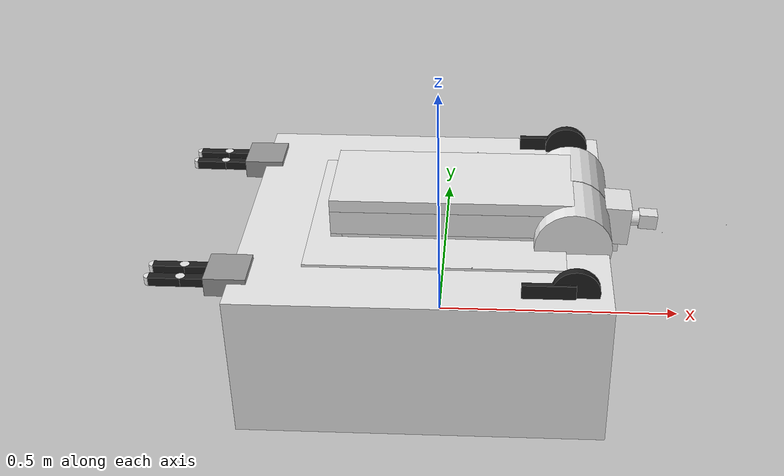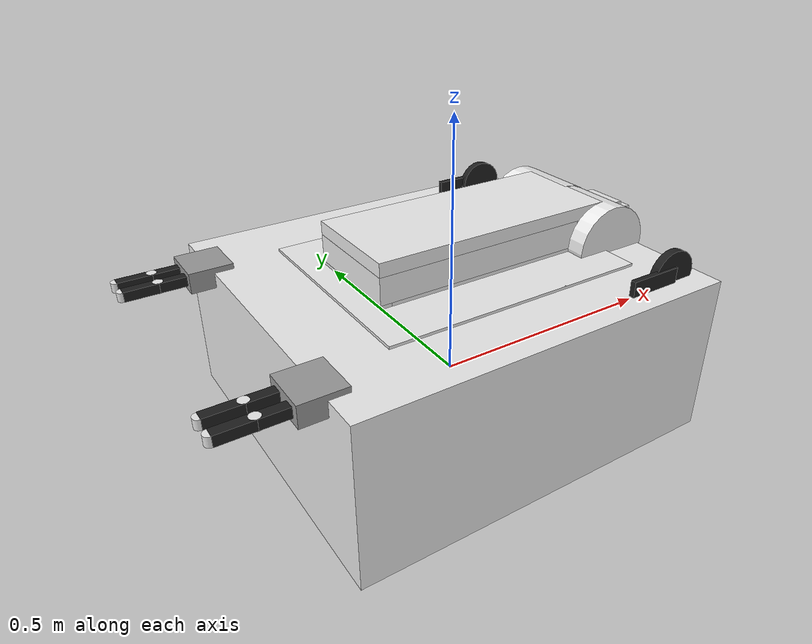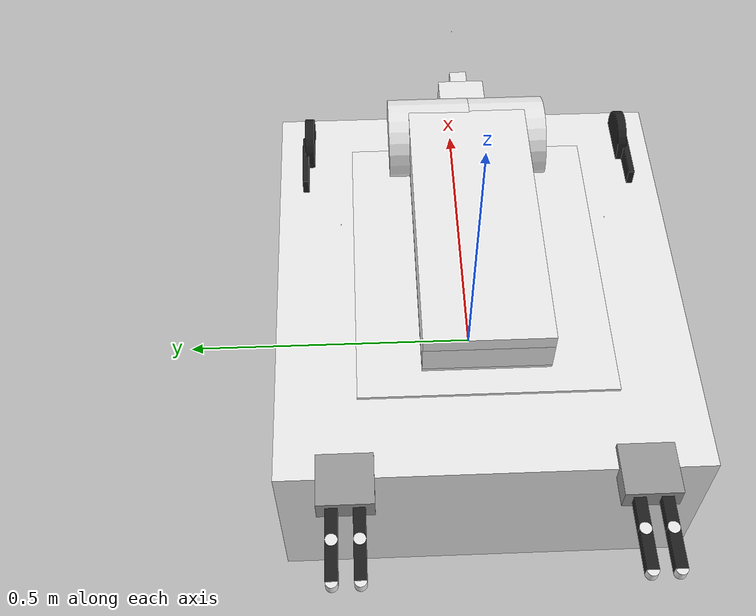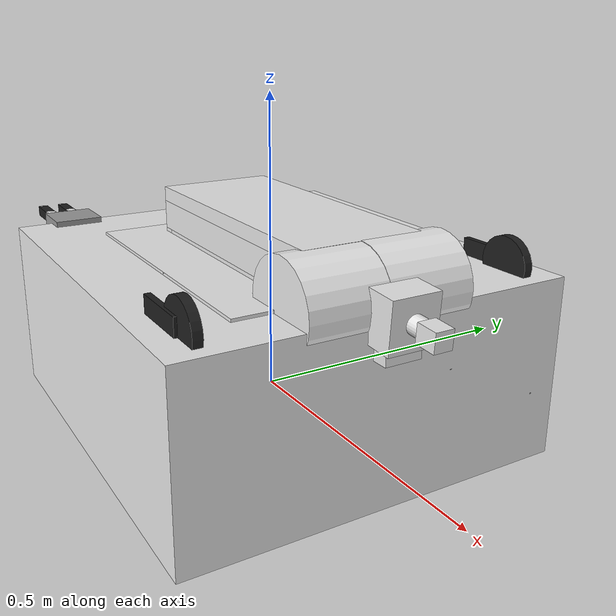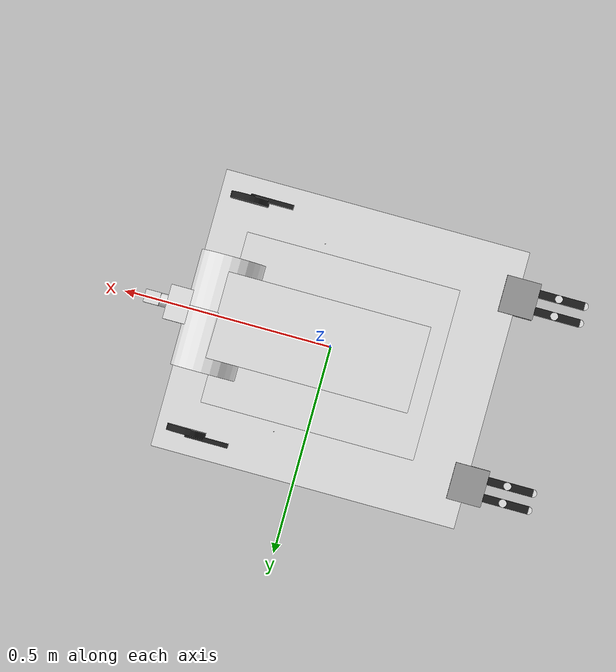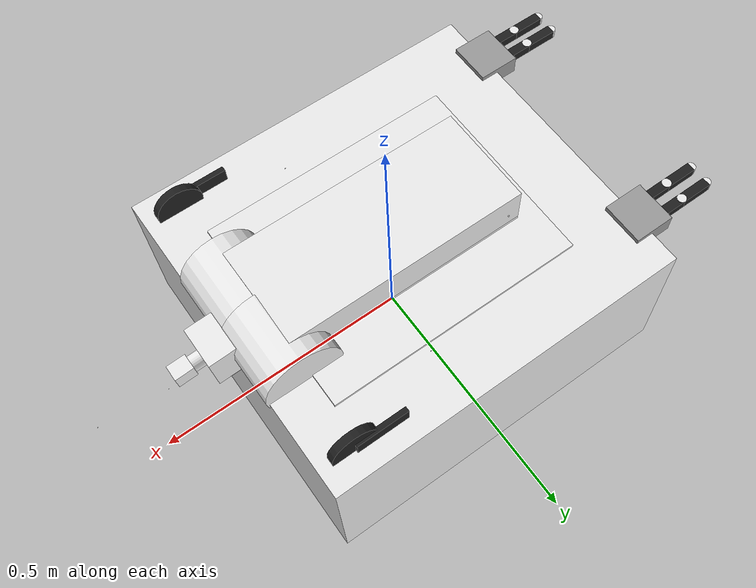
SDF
<sdf version="1.4">
 <model name="sergio">
  <link name="base_link">
   <inertial>
    <pose>0.183413 -3.77114e-18 0.169408 0 -0 0</pose>
    <mass>0.92</mass>
    <inertia>
     <ixx>0.0232844</ixx>
     <ixy>-6.36342e-19</ixy>
     <ixz>-0.00704276</ixz>
     <iyy>0.0329244</iyy>
     <iyz>-2.92848e-19</iyz>
     <izz>0.0454683</izz>
    </inertia>
   </inertial>
   <collision name="base_link_collision">
    <geometry><cylinder><length>0</length><radius>0</radius></cylinder></geometry>
   </collision>
   <collision name="base_link_collision_base">
    <pose>-0.0235 0 0.085 0 -0 0</pose>
    <geometry><box><size>0.713 0.65 0.3</size></box></geometry>
   </collision>
   <collision name="base_link_collision_base_laser">
    <pose>0.3295 0 0.2095 0 -0 0</pose>
    <geometry><box><size>0.06 0.06 0.069</size></box></geometry>
   </collision>
   <collision name="base_link_collision_base_lasertop">
    <pose>0.3295 0 0.253 0 -0 0</pose>
    <geometry><box><size>0.06 0.06 0.018</size></box></geometry>
   </collision>
   <collision name="base_link_collision_base_torso_mount">
    <pose>0 0 0.14 0 -0 0</pose>
    <geometry><cylinder><length>0</length><radius>0</radius></cylinder></geometry>
   </collision>
   <collision name="base_link_collision_laser_mount">
    <pose>0.3045 0 0.1575 0 -0 0</pose>
    <geometry><box><size>0.01 0.06 0.035</size></box></geometry>
   </collision>
   <collision name="base_link_collision_sidepot_left">
    <pose>0 0.28075 0.085 0 -0 0</pose>
    <geometry><box><size>0.4 0.0615 0.1</size></box></geometry>
   </collision>
   <collision name="base_link_collision_sidepot_right">
    <pose>0 -0.28075 0.085 0 -0 0</pose>
    <geometry><box><size>0.4 0.0615 0.1</size></box></geometry>
   </collision>
   <collision name="base_link_collision_torso_mounting_frame">
    <pose>0 0 0.215 0 -0 0</pose>
    <geometry><box><size>0.5 0.4 0.05</size></box></geometry>
   </collision>
   <visual name="base_link_visual">
    <geometry><cylinder><length>0</length><radius>0</radius></cylinder></geometry>
    <material><script><name>Gazebo/White</name><uri>__default__</uri></script></material>
    <material><script><name>Gazebo/White</name><uri>__default__</uri></script></material>
   </visual>
   <visual name="base_link_visual_base">
    <pose>-0.0235 0 0.085 0 -0 0</pose>
    <geometry><box><size>0.713 0.65 0.3</size></box></geometry>
    <material><script><name>Gazebo/White</name><uri>__default__</uri></script></material>
   </visual>
   <visual name="base_link_visual_base_laser">
    <pose>0.3295 0 0.2095 0 -0 0</pose>
    <geometry><box><size>0.06 0.06 0.069</size></box></geometry>
    <material><script><name>Gazebo/White</name><uri>__default__</uri></script></material>
    <material><script><name>Gazebo/Black</name><uri>__default__</uri></script></material>
   </visual>
   <visual name="base_link_visual_base_lasertop">
    <pose>0.3295 0 0.253 0 -0 0</pose>
    <geometry><box><size>0.06 0.06 0.018</size></box></geometry>
    <material><script><name>Gazebo/White</name><uri>__default__</uri></script></material>
    <material><script><name>Gazebo/Black</name><uri>__default__</uri></script></material>
    <material><script><name>Gazebo/Orange</name><uri>__default__</uri></script></material>
   </visual>
   <visual name="base_link_visual_base_torso_mount">
    <pose>0 0 0.14 0 -0 0</pose>
    <geometry><cylinder><length>0</length><radius>0</radius></cylinder></geometry>
    <material><script><name>Gazebo/White</name><uri>__default__</uri></script></material>
    <material><script><name>Gazebo/White</name><uri>__default__</uri></script></material>
   </visual>
   <visual name="base_link_visual_laser_mount">
    <pose>0.3045 0 0.1575 0 -0 0</pose>
    <geometry><box><size>0.01 0.06 0.035</size></box></geometry>
    <material><script><name>Gazebo/White</name><uri>__default__</uri></script></material>
   </visual>
   <visual name="base_link_visual_sidepot_left">
    <pose>0 0.28075 0.085 0 -0 0</pose>
    <geometry><box><size>0.4 0.0615 0.1</size></box></geometry>
    <material><script><name>Gazebo/White</name><uri>__default__</uri></script></material>
   </visual>
   <visual name="base_link_visual_sidepot_right">
    <pose>0 -0.28075 0.085 0 -0 0</pose>
    <geometry><box><size>0.4 0.0615 0.1</size></box></geometry>
    <material><script><name>Gazebo/White</name><uri>__default__</uri></script></material>
   </visual>
   <visual name="base_link_visual_torso_mounting_frame">
    <pose>0 0 0.215 0 -0 0</pose>
    <geometry><box><size>0.5 0.4 0.05</size></box></geometry>
    <material><script><name>Gazebo/White</name><uri>__default__</uri></script></material>
   </visual>
   <velocity_decay><linear>0</linear><angular>0</angular></velocity_decay>
   <velocity_decay><linear>0</linear><angular>0</angular></velocity_decay>
   <sensor name="base_kinect_openni_camera" type="depth">
    <update_rate>20</update_rate>
    <camera name="base_kinect">
     <horizontal_fov>1.0472</horizontal_fov>
     <image><width>640</width><height>480</height><format>R8G8B8</format></image>
     <clip><near>0.05</near><far>3</far></clip>
    </camera>
    <plugin name="base_kinect_camera_controller" filename="libKinectPlugin.so">
     <alwaysOn>1</alwaysOn>
     <updateRate>20</updateRate>
     <cameraName>base_kinect</cameraName>
     <imageTopicName>rgb/image_color</imageTopicName>
     <cameraInfoTopicName>rgb/camera_info</cameraInfoTopicName>
     <depthImageTopicName>depth/image</depthImageTopicName>
     <depthImageCameraInfoTopicName>depth/camera_info</depthImageCameraInfoTopicName>
     <pointCloudTopicName>rgb/points</pointCloudTopicName>
     <frameName>base_kinect/openni_depth_optical_frame</frameName>
    </plugin>
    <pose>0.3 0 0.315 0 -0.07 0</pose>
   </sensor>
   <sensor name="base_ray_sensor" type="ray">
    <update_rate>100</update_rate>
    <ray>
     <scan>
      <horizontal>
       <samples>918</samples>
       <resolution>1</resolution>
       <min_angle>-2.00277</min_angle>
       <max_angle>1.9984</max_angle>
      </horizontal>
      <vertical><samples>1</samples><min_angle>0</min_angle><max_angle>0</max_angle></vertical>
     </scan>
     <range><min>0.05</min><max>60</max><resolution>0.01</resolution></range>
    </ray>
    <plugin name="base_ros_ray_sensor_controller" filename="libLaserPlugin.so">
     <gaussianNoise>0.005</gaussianNoise>
     <alwaysOn>1</alwaysOn>
     <updateRate>40</updateRate>
     <topicName>base_front_laser</topicName>
     <node_namespace>base</node_namespace>
     <frameName>base_laser</frameName>
    </plugin>
    <pose>0.3295 0 0.23 0 -0 0</pose>
   </sensor>
   <velocity_decay><linear>0</linear><angular>0</angular></velocity_decay>
   <velocity_decay><linear>0</linear><angular>0</angular></velocity_decay>
   <velocity_decay><linear>0</linear><angular>0</angular></velocity_decay>
   <velocity_decay><linear>0</linear><angular>0</angular></velocity_decay>
   <velocity_decay><linear>0</linear><angular>0</angular></velocity_decay>
   <velocity_decay><linear>0</linear><angular>0</angular></velocity_decay>
   <velocity_decay><linear>0</linear><angular>0</angular></velocity_decay>
   <velocity_decay><linear>0</linear><angular>0</angular></velocity_decay>
  </link>
  <link name="lower_rear_leg">
   <pose>-0.185 0 0.2465 0 -0 0</pose>
   <inertial>
    <pose>0.195 0 0 0 -0 0</pose>
    <mass>5</mass>
    <inertia><ixx>0.001</ixx><ixy>0</ixy><ixz>0</ixz><iyy>0.001</iyy><iyz>0</iyz><izz>0.001</izz></inertia>
   </inertial>
   <collision name="lower_rear_leg_collision">
    <pose>0.195 0 0 0 -0 0</pose>
    <geometry><box><size>0.39 0.2 0.05</size></box></geometry>
   </collision>
   <visual name="lower_rear_leg_visual">
    <pose>0.195 0 0 0 -0 0</pose>
    <geometry><box><size>0.39 0.2 0.05</size></box></geometry>
    <material><script><name>Gazebo/White</name><uri>__default__</uri></script></material>
   </visual>
   <velocity_decay><linear>0</linear><angular>0</angular></velocity_decay>
  </link>
  <joint name="ankle_joint" type="revolute">
   <child>lower_rear_leg</child>
   <parent>base_link</parent>
   <axis>
    <xyz>0 -1 0</xyz>
    <limit><lower>0.152</lower><upper>1</upper><effort>1000</effort><velocity>0.265</velocity></limit>
    <dynamics><damping>6</damping></dynamics>
   </axis>
  </joint>
  <link name="upper_leg">
   <pose>0.205 0 0.2465 -0.00159265 0.00159265 3.14159</pose>
   <inertial>
    <pose>0.20575 0 0 0 -0 0</pose>
    <mass>5</mass>
    <inertia><ixx>0.001</ixx><ixy>0</ixy><ixz>0</ixz><iyy>0.001</iyy><iyz>0</iyz><izz>0.001</izz></inertia>
   </inertial>
   <collision name="upper_leg_collision">
    <pose>0.20575 0 0 0 -0 0</pose>
    <geometry><box><size>0.4115 0.2 0.1</size></box></geometry>
   </collision>
   <visual name="upper_leg_visual">
    <pose>0.20575 0 0 0 -0 0</pose>
    <geometry><box><size>0.4115 0.2 0.1</size></box></geometry>
    <material><script><name>Gazebo/White</name><uri>__default__</uri></script></material>
   </visual>
   <velocity_decay><linear>0</linear><angular>0</angular></velocity_decay>
  </link>
  <joint name="knee_joint" type="revolute">
   <child>upper_leg</child>
   <parent>lower_rear_leg</parent>
   <axis>
    <xyz>-2.53654e-06 0.999999 0.00159265</xyz>
    <limit><lower>0.419</lower><upper>2.059</upper><effort>1000</effort><velocity>0.539</velocity></limit>
    <dynamics><damping>6</damping></dynamics>
   </axis>
  </joint>
  <link name="trunk">
   <pose>-0.206499 -5.29396e-23 0.245845 -2.01992e-09 -2.01992e-09 2.53654e-06</pose>
   <inertial>
    <pose>0.243359 0 -3.32841e-05 0 -0 0</pose>
    <mass>10.35</mass>
    <inertia>
     <ixx>0.0223699</ixx>
     <ixy>0</ixy>
     <ixz>0.000107463</ixz>
     <iyy>0.0420765</iyy>
     <iyz>-4.81381e-06</iyz>
     <izz>0.0433416</izz>
    </inertia>
   </inertial>
   <collision name="trunk_collision">
    <pose>0.235 0 0 0 -0 0</pose>
    <geometry><box><size>0.47 0.2 0.15</size></box></geometry>
   </collision>
   <collision name="trunk_collision_head_mount">
    <pose>0.555307 4.23516e-22 -0.00688981 3.14 0.065 0</pose>
    <geometry><box><size>0.061 0.08 0.08</size></box></geometry>
   </collision>
   <collision name="trunk_collision_shoulder_mount_left">
    <pose>0.47 0.0650002 0.000246861 -1.57319 -0 0</pose>
    <geometry><cylinder><length>0.14</length><radius>0.075</radius></cylinder></geometry>
   </collision>
   <collision name="trunk_collision_shoulder_mount_right">
    <pose>0.47 -0.0650002 -0.000246861 -1.57319 -0 0</pose>
    <geometry><cylinder><length>0.14</length><radius>0.075</radius></cylinder></geometry>
   </collision>
   <visual name="trunk_visual">
    <pose>0.235 0 0 0 -0 0</pose>
    <geometry><box><size>0.47 0.2 0.15</size></box></geometry>
    <material><script><name>Gazebo/White</name><uri>__default__</uri></script></material>
   </visual>
   <visual name="trunk_visual_head_mount">
    <pose>0.555307 4.23516e-22 -0.00688981 3.14 0.065 0</pose>
    <geometry><box><size>0.061 0.08 0.08</size></box></geometry>
    <material><script><name>Gazebo/White</name><uri>__default__</uri></script></material>
    <material><script><name>Gazebo/White</name><uri>__default__</uri></script></material>
   </visual>
   <visual name="trunk_visual_shoulder_mount_left">
    <pose>0.47 0.0650002 0.000246861 -1.57319 -0 0</pose>
    <geometry><cylinder><length>0.14</length><radius>0.075</radius></cylinder></geometry>
    <material><script><name>Gazebo/White</name><uri>__default__</uri></script></material>
   </visual>
   <visual name="trunk_visual_shoulder_mount_right">
    <pose>0.47 -0.0650002 -0.000246861 -1.57319 -0 0</pose>
    <geometry><cylinder><length>0.14</length><radius>0.075</radius></cylinder></geometry>
    <material><script><name>Gazebo/White</name><uri>__default__</uri></script></material>
   </visual>
   <velocity_decay><linear>0</linear><angular>0</angular></velocity_decay>
   <velocity_decay><linear>0</linear><angular>0</angular></velocity_decay>
   <velocity_decay><linear>0</linear><angular>0</angular></velocity_decay>
   <velocity_decay><linear>0</linear><angular>0</angular></velocity_decay>
  </link>
  <joint name="hip_joint" type="revolute">
   <child>trunk</child>
   <parent>upper_leg</parent>
   <axis>
    <xyz>2.53654e-06 -1 2.01992e-09</xyz>
    <limit><lower>1.007</lower><upper>2.31</upper><effort>1000</effort><velocity>0.375</velocity></limit>
    <dynamics><damping>6</damping></dynamics>
   </axis>
  </joint>
  <link name="neck_pan">
   <pose>0.399201 1.53636e-06 0.235675 -3.11872 1.50577 -3.11708</pose>
   <inertial>
    <pose>0 0 -0.01 0 -0 0</pose>
    <mass>0.05</mass>
    <inertia><ixx>0.0001</ixx><ixy>0</ixy><ixz>0</ixz><iyy>0.0001</iyy><iyz>0</iyz><izz>0.0001</izz></inertia>
   </inertial>
   <collision name="neck_pan_collision">
    <pose>0 0 -0.01 0 -0 0</pose>
    <geometry><cylinder><length>0.02</length><radius>0.015</radius></cylinder></geometry>
   </collision>
   <visual name="neck_pan_visual">
    <pose>0 0 -0.01 0 -0 0</pose>
    <geometry><cylinder><length>0.02</length><radius>0.015</radius></cylinder></geometry>
    <material><script><name>Gazebo/White</name><uri>__default__</uri></script></material>
   </visual>
   <velocity_decay><linear>0</linear><angular>0</angular></velocity_decay>
  </link>
  <joint name="neck_pan_joint" type="revolute">
   <child>neck_pan</child>
   <parent>trunk</parent>
   <axis>
    <xyz>0.997887 0.00159518 -0.0649604</xyz>
    <limit><lower>-1.586</lower><upper>1.586</upper><effort>13.4</effort><velocity>1</velocity></limit>
    <dynamics><damping>0.1</damping></dynamics>
   </axis>
  </joint>
  <link name="neck_tilt">
   <pose>0.399201 1.53636e-06 0.235675 -3.11872 1.50577 -3.11708</pose>
   <inertial>
    <pose>0.00945205 0.00257534 0.0290274 0 -0 0</pose>
    <mass>0.073</mass>
    <inertia>
     <ixx>0.00332243</ixx>
     <ixy>-3.86301e-06</ixy>
     <ixz>-1.65411e-05</ixz>
     <iyy>0.00333348</iyy>
     <iyz>-4.50685e-06</iyz>
     <izz>0.00331731</izz>
    </inertia>
   </inertial>
   <collision name="neck_tilt_collision">
    <pose>0 -0 0.018 0 -0 0</pose>
    <geometry><box><size>0.03 0.03 0.036</size></box></geometry>
   </collision>
   <collision name="neck_tilt_collision_head">
    <pose>0 0 0.177 0 0 -1.5708</pose>
    <geometry><box><size>0.001 0.001 0.001</size></box></geometry>
   </collision>
   <visual name="neck_tilt_visual">
    <pose>0 -0 0.018 0 -0 0</pose>
    <geometry><box><size>0.03 0.03 0.036</size></box></geometry>
    <material><script><name>Gazebo/White</name><uri>__default__</uri></script></material>
   </visual>
   <visual name="neck_tilt_visual_head">
    <pose>0 0 0.177 0 0 -1.5708</pose>
    <geometry><box><size>0.001 0.001 0.001</size></box></geometry>
    <material><script><name>Gazebo/White</name><uri>__default__</uri></script></material>
   </visual>
   <visual name="neck_tilt_visual_top_kinect/openni_camera">
    <pose>0.03 0 0.053 0 -0 0</pose>
    <geometry><mesh><scale>1 1 1</scale><uri>model://media/meshes/kinect_without_base.dae</uri></mesh></geometry>
   </visual>
   <velocity_decay><linear>0</linear><angular>0</angular></velocity_decay>
   <velocity_decay><linear>0</linear><angular>0</angular></velocity_decay>
   <velocity_decay><linear>0</linear><angular>0</angular></velocity_decay>
   <sensor name="openni_camera" type="depth">
    <update_rate>20</update_rate>
    <camera name="top_kinect">
     <horizontal_fov>1.0472</horizontal_fov>
     <image><width>640</width><height>480</height><format>R8G8B8</format></image>
     <clip><near>0.05</near><far>3</far></clip>
    </camera>
    <plugin name="kinect_camera_controller" filename="libKinectPlugin.so">
     <alwaysOn>1</alwaysOn>
     <updateRate>20</updateRate>
     <cameraName>top_kinect</cameraName>
     <imageTopicName>rgb/image_color</imageTopicName>
     <cameraInfoTopicName>rgb/camera_info</cameraInfoTopicName>
     <depthImageTopicName>depth/image</depthImageTopicName>
     <depthImageCameraInfoTopicName>depth/camera_info</depthImageCameraInfoTopicName>
     <pointCloudTopicName>rgb/points</pointCloudTopicName>
     <frameName>top_kinect/openni_depth_optical_frame</frameName>
    </plugin>
    <pose>0 0 0.036 0 -0 0</pose>
   </sensor>
  </link>
  <joint name="neck_tilt_joint" type="revolute">
   <child>neck_tilt</child>
   <parent>neck_pan</parent>
   <axis>
    <xyz>-0.00169528 0.999997 -0.00148583</xyz>
    <limit><lower>-0.994</lower><upper>0.994</upper><effort>13.4</effort><velocity>1</velocity></limit>
    <dynamics><damping>0.1</damping></dynamics>
   </axis>
  </joint>
  <link name="torso_laser_mount">
   <pose>0.109801 8.02173e-07 0.178745 3.14 1.406 2.5244e-06</pose>
   <inertial>
    <pose>0 0 -0.0285865 0 -0 0</pose>
    <mass>0.52</mass>
    <inertia>
     <ixx>0.000326884</ixx>
     <ixy>0</ixy>
     <ixz>0</ixz>
     <iyy>0.000326884</iyy>
     <iyz>0</iyz>
     <izz>0.0003</izz>
    </inertia>
   </inertial>
   <collision name="torso_laser_mount_collision"><geometry><box><size>0 0 0</size></box></geometry></collision>
   <collision name="torso_laser_mount_collision_torso_laser">
    <pose>0 0 -0.03 0 -0 0</pose>
    <geometry><box><size>0.06 0.06 0.069</size></box></geometry>
   </collision>
   <collision name="torso_laser_mount_collision_torso_lasertop">
    <pose>0 0 0.0135 0 -0 0</pose>
    <geometry><box><size>0.06 0.06 0.018</size></box></geometry>
   </collision>
   <visual name="torso_laser_mount_visual">
    <geometry><box><size>0 0 0</size></box></geometry>
    <material><script><name>Gazebo/White</name><uri>__default__</uri></script></material>
    <material><script><name>Gazebo/Black</name><uri>__default__</uri></script></material>
    <material><script><name>Gazebo/Black</name><uri>__default__</uri></script></material>
   </visual>
   <visual name="torso_laser_mount_visual_torso_laser">
    <pose>0 0 -0.03 0 -0 0</pose>
    <geometry><box><size>0.06 0.06 0.069</size></box></geometry>
    <material><script><name>Gazebo/Black</name><uri>__default__</uri></script></material>
   </visual>
   <visual name="torso_laser_mount_visual_torso_lasertop">
    <pose>0 0 0.0135 0 -0 0</pose>
    <geometry><box><size>0.06 0.06 0.018</size></box></geometry>
    <material><script><name>Gazebo/Black</name><uri>__default__</uri></script></material>
    <material><script><name>Gazebo/Orange</name><uri>__default__</uri></script></material>
   </visual>
   <velocity_decay><linear>0</linear><angular>0</angular></velocity_decay>
   <velocity_decay><linear>0</linear><angular>0</angular></velocity_decay>
   <velocity_decay><linear>0</linear><angular>0</angular></velocity_decay>
  </link>
  <joint name="laser_tilt_joint" type="revolute">
   <child>torso_laser_mount</child>
   <parent>trunk</parent>
   <axis>
    <xyz>0.00157361 -0.999999 0.000261279</xyz>
    <limit><lower>0</lower><upper>0.324</upper><effort>13.4</effort><velocity>1</velocity></limit>
    <dynamics><damping>0.1</damping></dynamics>
   </axis>
  </joint>
  <link name="shoulder_link1_left">
   <pose>0.2635 0.220001 0.245845 -0.00230874 1.5692 -1.5731</pose>
   <inertial>
    <mass>0.25</mass>
    <inertia><ixx>6</ixx><ixy>0</ixy><ixz>0</ixz><iyy>0.01</iyy><iyz>0</iyz><izz>0.01</izz></inertia>
   </inertial>
   <collision name="shoulder_link1_left_collision">
    <pose>0 0 -0.0525 0 -0 0</pose>
    <geometry><cylinder><length>0.015</length><radius>0.045</radius></cylinder></geometry>
   </collision>
   <visual name="shoulder_link1_left_visual">
    <pose>0 0 -0.0525 0 -0 0</pose>
    <geometry><cylinder><length>0.015</length><radius>0.045</radius></cylinder></geometry>
    <material><script><name>Gazebo/Black</name><uri>__default__</uri></script></material>
   </visual>
   <velocity_decay><linear>0</linear><angular>0</angular></velocity_decay>
  </link>
  <joint name="shoulder_yaw_joint_left" type="revolute">
   <child>shoulder_link1_left</child>
   <parent>trunk</parent>
   <axis>
    <xyz>3.66715e-06 0.00159265 0.999999</xyz>
    <limit><lower>-1.57</lower><upper>0</upper><effort>13.4</effort><velocity>1</velocity></limit>
    <dynamics><damping>4</damping></dynamics>
   </axis>
  </joint>
  <link name="shoulder_link2_left">
   <pose>0.2635 0.220001 0.245845 -1.57311 1.5692 -1.5731</pose>
   <inertial>
    <mass>0.15</mass>
    <inertia><ixx>0.01</ixx><ixy>0</ixy><ixz>0</ixz><iyy>4.04</iyy><iyz>0</iyz><izz>0.001</izz></inertia>
   </inertial>
   <collision name="shoulder_link2_left_collision">
    <pose>0 0.06 -0.05 0 -0 0</pose>
    <geometry><box><size>0.035 0.01 0.1</size></box></geometry>
   </collision>
   <visual name="shoulder_link2_left_visual">
    <pose>0 0.06 -0.05 0 -0 0</pose>
    <geometry><box><size>0.035 0.01 0.1</size></box></geometry>
    <material><script><name>Gazebo/Black</name><uri>__default__</uri></script></material>
   </visual>
   <velocity_decay><linear>0</linear><angular>0</angular></velocity_decay>
  </link>
  <joint name="shoulder_pitch_joint_left" type="revolute">
   <child>shoulder_link2_left</child>
   <parent>shoulder_link1_left</parent>
   <axis>
    <xyz>9.88295e-06 -0.999999 0.00159265</xyz>
    <limit><lower>-1.57</lower><upper>1.57</upper><effort>13.4</effort><velocity>1</velocity></limit>
    <dynamics><damping>4</damping></dynamics>
   </axis>
  </joint>
  <link name="upper_arm_left">
   <pose>0.2635 0.220001 0.245845 -0.00230874 1.5692 -1.5731</pose>
   <inertial>
    <pose>0 -0.2 0 0 -0 0</pose>
    <mass>2.95</mass>
    <inertia><ixx>0.027</ixx><ixy>0</ixy><ixz>0</ixz><iyy>0.45993</iyy><iyz>0</iyz><izz>0.004</izz></inertia>
   </inertial>
   <collision name="upper_arm_left_collision">
    <pose>-0.00959 -0.19131 -1e-05 0 -0 3.1415</pose>
    <geometry>
     <mesh><scale>0.0004 0.0004 0.0004</scale><uri>model://media/meshes/upperarmtextured.dae</uri></mesh>
    </geometry>
   </collision>
   <visual name="upper_arm_left_visual">
    <pose>-0.00959 -0.19131 -1e-05 0 -0 3.1415</pose>
    <geometry>
     <mesh><scale>0.0004 0.0004 0.0004</scale><uri>model://media/meshes/upperarmtextured.dae</uri></mesh>
    </geometry>
    <material><script><name>sergio_description/white</name><uri>__default__</uri></script></material>
   </visual>
   <velocity_decay><linear>0</linear><angular>0</angular></velocity_decay>
  </link>
  <joint name="shoulder_roll_joint_left" type="revolute">
   <child>upper_arm_left</child>
   <parent>shoulder_link2_left</parent>
   <axis>
    <xyz>-1 -6.20389e-06 3.67703e-06</xyz>
    <limit><lower>-1.57</lower><upper>1.57</upper><effort>9.8</effort><velocity>1</velocity></limit>
    <dynamics><damping>3.8</damping></dynamics>
   </axis>
  </joint>
  <link name="elbow_link4_left">
   <pose>-0.0565001 0.219983 0.235846 -1.57311 1.5692 -1.5731</pose>
   <inertial>
    <mass>0.1</mass>
    <inertia><ixx>0.001</ixx><ixy>0</ixy><ixz>0</ixz><iyy>0.6</iyy><iyz>0</iyz><izz>0.001</izz></inertia>
   </inertial>
   <collision name="elbow_link4_left_collision">
    <geometry><cylinder><length>0</length><radius>0</radius></cylinder></geometry>
   </collision>
   <visual name="elbow_link4_left_visual">
    <geometry><cylinder><length>0</length><radius>0</radius></cylinder></geometry>
    <material><script><name>Gazebo/Grey</name><uri>__default__</uri></script></material>
   </visual>
   <velocity_decay><linear>0</linear><angular>0</angular></velocity_decay>
  </link>
  <joint name="elbow_pitch_joint_left" type="revolute">
   <child>elbow_link4_left</child>
   <parent>upper_arm_left</parent>
   <axis>
    <xyz>9.88295e-06 -0.999999 0.00159265</xyz>
    <limit><lower>0</lower><upper>2.23</upper><effort>4.5</effort><velocity>1</velocity></limit>
    <dynamics><damping>3</damping></dynamics>
   </axis>
  </joint>
  <link name="fore_arm_left">
   <pose>-0.0565001 0.219983 0.235846 -0.00230874 1.5692 -1.5731</pose>
   <inertial>
    <pose>0 -0.14 0 0 -0 0</pose>
    <mass>0.85</mass>
    <inertia><ixx>0.001</ixx><ixy>0</ixy><ixz>0</ixz><iyy>0.5</iyy><iyz>0</iyz><izz>0.001</izz></inertia>
   </inertial>
   <collision name="fore_arm_left_collision">
    <pose>0.00425 -0.14868 0.00547 3.14159 -1.57079 3.14159</pose>
    <geometry>
     <mesh><scale>0.0004 0.0004 0.0004</scale><uri>model://media/meshes/forearmtextured.dae</uri></mesh>
    </geometry>
   </collision>
   <visual name="fore_arm_left_visual">
    <pose>0.00425 -0.14868 0.00547 3.14159 -1.57079 3.14159</pose>
    <geometry>
     <mesh><scale>0.0004 0.0004 0.0004</scale><uri>model://media/meshes/forearmtextured.dae</uri></mesh>
    </geometry>
    <material><script><name>sergio_description/white</name><uri>__default__</uri></script></material>
   </visual>
   <velocity_decay><linear>0</linear><angular>0</angular></velocity_decay>
  </link>
  <joint name="elbow_roll_joint_left" type="revolute">
   <child>fore_arm_left</child>
   <parent>elbow_link4_left</parent>
   <axis>
    <xyz>-1 -6.20389e-06 3.67703e-06</xyz>
    <limit><lower>-1.83</lower><upper>1.83</upper><effort>4.5</effort><velocity>1</velocity></limit>
    <dynamics><damping>3.5</damping></dynamics>
   </axis>
  </joint>
  <link name="wrist_link6_left">
   <pose>-0.3365 0.219966 0.225847 -3.14 -7.35023e-06 -3.14159</pose>
   <inertial>
    <mass>0.01</mass>
    <inertia><ixx>0.001</ixx><ixy>0</ixy><ixz>0</ixz><iyy>0.03322</iyy><iyz>0</iyz><izz>0.001</izz></inertia>
   </inertial>
   <collision name="wrist_link6_left_collision">
    <pose>0 0 0 1.5708 -0 0</pose>
    <geometry><cylinder><length>0</length><radius>0</radius></cylinder></geometry>
   </collision>
   <visual name="wrist_link6_left_visual">
    <pose>0 0 0 1.5708 -0 0</pose>
    <geometry><cylinder><length>0</length><radius>0</radius></cylinder></geometry>
    <material><script><name>Gazebo/Black</name><uri>__default__</uri></script></material>
   </visual>
   <velocity_decay><linear>0</linear><angular>0</angular></velocity_decay>
  </link>
  <joint name="wrist_pitch_joint_left" type="revolute">
   <child>wrist_link6_left</child>
   <parent>fore_arm_left</parent>
   <axis>
    <xyz>6.20972e-06 -0.999999 0.00158898</xyz>
    <limit><lower>-0.95</lower><upper>0.95</upper><effort>1</effort><velocity>1</velocity></limit>
    <dynamics><damping>0.35</damping></dynamics>
   </axis>
  </joint>
  <link name="hand_left">
   <pose>-0.3365 0.219966 0.225847 -3.14 -7.35023e-06 -3.14159</pose>
   <inertial>
    <pose>0.047619 0 0 0 -0 0</pose>
    <mass>0.21</mass>
    <inertia>
     <ixx>0.0101</ixx>
     <ixy>0</ixy>
     <ixz>0</ixz>
     <iyy>0.0101006</iyy>
     <iyz>0</iyz>
     <izz>0.0623006</izz>
    </inertia>
   </inertial>
   <collision name="hand_left_collision">
    <pose>0.048 0 0 0 -0 0</pose>
    <geometry><box><size>0.08 0.085 0.038</size></box></geometry>
   </collision>
   <collision name="hand_left_collision_grippoint_left">
    <pose>0.04 0 0 0 -0 0</pose>
    <geometry><box><size>0 0 0</size></box></geometry>
   </collision>
   <visual name="hand_left_visual">
    <pose>0.048 0 0 0 -0 0</pose>
    <geometry><box><size>0.08 0.085 0.038</size></box></geometry>
    <material><script><name>Gazebo/Grey</name><uri>__default__</uri></script></material>
   </visual>
   <visual name="hand_left_visual_grippoint_left">
    <pose>0.04 0 0 0 -0 0</pose>
    <geometry><box><size>0 0 0</size></box></geometry>
    <material><script><name>Gazebo/Blue</name><uri>__default__</uri></script></material>
   </visual>
   <velocity_decay><linear>0</linear><angular>0</angular></velocity_decay>
   <velocity_decay><linear>0</linear><angular>0</angular></velocity_decay>
  </link>
  <joint name="wrist_yaw_joint_left" type="revolute">
   <child>hand_left</child>
   <parent>wrist_link6_left</parent>
   <axis>
    <xyz>7.41378e-06 0.00160487 1.01</xyz>
    <limit><lower>-0.61</lower><upper>0.61</upper><effort>1</effort><velocity>1</velocity></limit>
    <dynamics><damping>0.3</damping></dynamics>
   </axis>
  </joint>
  <link name="finger1_left">
   <pose>-0.4115 0.239965 0.225816 -2.03906 1.56902 -2.03905</pose>
   <inertial>
    <pose>0 0 -0.045 0 -0 0</pose>
    <mass>0.02</mass>
    <inertia>
     <ixx>0.0110045</ixx>
     <ixy>0</ixy>
     <ixz>1.05879e-22</ixz>
     <iyy>0.0110045</iyy>
     <iyz>0</iyz>
     <izz>0.011</izz>
    </inertia>
   </inertial>
   <collision name="finger1_left_collision">
    <pose>0 0 -0.03 0 -0 0</pose>
    <geometry><box><size>0.018 0.018 0.06</size></box></geometry>
    <surface><friction><ode><mu>100</mu><mu2>100</mu2></ode></friction></surface>
   </collision>
   <collision name="finger1_left_collision_finger1_phalanx_left">
    <pose>0 0 -0.06 0 1.57 0</pose>
    <geometry><cylinder><length>0.019</length><radius>0.009</radius></cylinder></geometry>
    <surface><friction><ode><mu>100</mu><mu2>100</mu2></ode></friction></surface>
   </collision>
   <visual name="finger1_left_visual">
    <pose>0 0 -0.03 0 -0 0</pose>
    <geometry><box><size>0.018 0.018 0.06</size></box></geometry>
    <material><script><name>Gazebo/Black</name><uri>__default__</uri></script></material>
   </visual>
   <visual name="finger1_left_visual_finger1_phalanx_left">
    <pose>0 0 -0.06 0 1.57 0</pose>
    <geometry><cylinder><length>0.019</length><radius>0.009</radius></cylinder></geometry>
    <material><script><name>Gazebo/White</name><uri>__default__</uri></script></material>
   </visual>
   <velocity_decay><linear>0</linear><angular>0</angular></velocity_decay>
   <velocity_decay><linear>0</linear><angular>0</angular></velocity_decay>
   <velocity_decay><linear>0</linear><angular>0</angular></velocity_decay>
  </link>
  <joint name="finger1_joint_left" type="revolute">
   <child>finger1_left</child>
   <parent>hand_left</parent>
   <axis>
    <xyz>-0.000803667 -0.00158899 -0.999998</xyz>
    <limit><lower>-1.57</lower><upper>1.57</upper><effort>3</effort><velocity>1</velocity></limit>
    <dynamics><damping>0.5</damping></dynamics>
   </axis>
  </joint>
  <link name="finger1_tip_left">
   <pose>-0.4715 0.239965 0.225864 -2.03906 1.56902 -2.03905</pose>
   <inertial>
    <pose>0 0 -0.045 0 -0 0</pose>
    <mass>0.02</mass>
    <inertia>
     <ixx>0.0013745</ixx>
     <ixy>0</ixy>
     <ixz>1.05879e-22</ixz>
     <iyy>0.0015245</iyy>
     <iyz>0</iyz>
     <izz>0.00152</izz>
    </inertia>
   </inertial>
   <collision name="finger1_tip_left_collision">
    <pose>0 0 -0.03 0 -0 0</pose>
    <geometry><box><size>0.018 0.018 0.06</size></box></geometry>
    <surface><friction><ode><mu>100</mu><mu2>100</mu2></ode></friction></surface>
   </collision>
   <collision name="finger1_tip_left_collision_finger1_tip_phalanx_left">
    <pose>0 0 -0.06 0 1.57 0</pose>
    <geometry><cylinder><length>0.017</length><radius>0.009</radius></cylinder></geometry>
    <surface><friction><ode><mu>100</mu><mu2>100</mu2></ode></friction></surface>
   </collision>
   <visual name="finger1_tip_left_visual">
    <pose>0 0 -0.03 0 -0 0</pose>
    <geometry><box><size>0.018 0.018 0.06</size></box></geometry>
    <material><script><name>Gazebo/Black</name><uri>__default__</uri></script></material>
   </visual>
   <visual name="finger1_tip_left_visual_finger1_tip_phalanx_left">
    <pose>0 0 -0.06 0 1.57 0</pose>
    <geometry><cylinder><length>0.017</length><radius>0.009</radius></cylinder></geometry>
    <material><script><name>Gazebo/White</name><uri>__default__</uri></script></material>
   </visual>
   <velocity_decay><linear>0</linear><angular>0</angular></velocity_decay>
   <velocity_decay><linear>0</linear><angular>0</angular></velocity_decay>
   <velocity_decay><linear>0</linear><angular>0</angular></velocity_decay>
  </link>
  <joint name="finger1_tip_joint_left" type="revolute">
   <child>finger1_tip_left</child>
   <parent>finger1_left</parent>
   <axis>
    <xyz>-0.000803667 -0.00158899 -0.999998</xyz>
    <limit><lower>-1.57</lower><upper>1.57</upper><effort>3</effort><velocity>1</velocity></limit>
    <dynamics><damping>0.5</damping></dynamics>
   </axis>
  </joint>
  <link name="finger2_left">
   <pose>-0.4115 0.199965 0.225879 -2.03906 1.56902 -2.03905</pose>
   <inertial>
    <pose>0 0 -0.045 0 -0 0</pose>
    <mass>0.02</mass>
    <inertia>
     <ixx>0.0110045</ixx>
     <ixy>0</ixy>
     <ixz>1.05879e-22</ixz>
     <iyy>0.0110045</iyy>
     <iyz>0</iyz>
     <izz>0.011</izz>
    </inertia>
   </inertial>
   <collision name="finger2_left_collision">
    <pose>0 0 -0.03 0 -0 0</pose>
    <geometry><box><size>0.018 0.018 0.06</size></box></geometry>
    <surface><friction><ode><mu>100</mu><mu2>100</mu2></ode></friction></surface>
   </collision>
   <collision name="finger2_left_collision_finger2_phalanx_left">
    <pose>0 0 -0.06 0 1.57 0</pose>
    <geometry><cylinder><length>0.019</length><radius>0.009</radius></cylinder></geometry>
    <surface><friction><ode><mu>100</mu><mu2>100</mu2></ode></friction></surface>
   </collision>
   <visual name="finger2_left_visual">
    <pose>0 0 -0.03 0 -0 0</pose>
    <geometry><box><size>0.018 0.018 0.06</size></box></geometry>
    <material><script><name>Gazebo/Black</name><uri>__default__</uri></script></material>
   </visual>
   <visual name="finger2_left_visual_finger2_phalanx_left">
    <pose>0 0 -0.06 0 1.57 0</pose>
    <geometry><cylinder><length>0.019</length><radius>0.009</radius></cylinder></geometry>
    <material><script><name>Gazebo/White</name><uri>__default__</uri></script></material>
   </visual>
   <velocity_decay><linear>0</linear><angular>0</angular></velocity_decay>
   <velocity_decay><linear>0</linear><angular>0</angular></velocity_decay>
   <velocity_decay><linear>0</linear><angular>0</angular></velocity_decay>
  </link>
  <joint name="finger2_joint_left" type="revolute">
   <child>finger2_left</child>
   <parent>hand_left</parent>
   <axis>
    <xyz>0.000803667 0.00158899 0.999998</xyz>
    <limit><lower>-1.57</lower><upper>1.57</upper><effort>3</effort><velocity>1</velocity></limit>
    <dynamics><damping>0.5</damping></dynamics>
   </axis>
  </joint>
  <link name="finger2_tip_left">
   <pose>-0.4715 0.199965 0.225927 -2.03906 1.56902 -2.03905</pose>
   <inertial>
    <pose>0 0 -0.045 0 -0 0</pose>
    <mass>0.02</mass>
    <inertia>
     <ixx>0.0013745</ixx>
     <ixy>0</ixy>
     <ixz>1.05879e-22</ixz>
     <iyy>0.0015245</iyy>
     <iyz>0</iyz>
     <izz>0.00152</izz>
    </inertia>
   </inertial>
   <collision name="finger2_tip_left_collision">
    <pose>0 0 -0.03 0 -0 0</pose>
    <geometry><box><size>0.018 0.018 0.06</size></box></geometry>
    <surface><friction><ode><mu>100</mu><mu2>100</mu2></ode></friction></surface>
   </collision>
   <collision name="finger2_tip_left_collision_finger2_tip_phalanx_left">
    <pose>0 0 -0.06 0 1.57 0</pose>
    <geometry><cylinder><length>0.017</length><radius>0.009</radius></cylinder></geometry>
    <surface><friction><ode><mu>100</mu><mu2>100</mu2></ode></friction></surface>
   </collision>
   <visual name="finger2_tip_left_visual">
    <pose>0 0 -0.03 0 -0 0</pose>
    <geometry><box><size>0.018 0.018 0.06</size></box></geometry>
    <material><script><name>Gazebo/Black</name><uri>__default__</uri></script></material>
   </visual>
   <visual name="finger2_tip_left_visual_finger2_tip_phalanx_left">
    <pose>0 0 -0.06 0 1.57 0</pose>
    <geometry><cylinder><length>0.017</length><radius>0.009</radius></cylinder></geometry>
    <material><script><name>Gazebo/White</name><uri>__default__</uri></script></material>
   </visual>
   <velocity_decay><linear>0</linear><angular>0</angular></velocity_decay>
   <velocity_decay><linear>0</linear><angular>0</angular></velocity_decay>
   <velocity_decay><linear>0</linear><angular>0</angular></velocity_decay>
  </link>
  <joint name="finger2_tip_joint_left" type="revolute">
   <child>finger2_tip_left</child>
   <parent>finger2_left</parent>
   <axis>
    <xyz>0.000803667 0.00158899 0.999998</xyz>
    <limit><lower>-1.57</lower><upper>1.57</upper><effort>3</effort><velocity>1</velocity></limit>
    <dynamics><damping>0.5</damping></dynamics>
   </axis>
  </joint>
  <link name="shoulder_link1_right">
   <pose>0.263501 -0.219999 0.245845 -0.00230874 1.5692 -1.5731</pose>
   <inertial>
    <mass>0.25</mass>
    <inertia><ixx>6</ixx><ixy>0</ixy><ixz>0</ixz><iyy>0.01</iyy><iyz>0</iyz><izz>0.01</izz></inertia>
   </inertial>
   <collision name="shoulder_link1_right_collision">
    <pose>0 0 0.0525 0 -0 0</pose>
    <geometry><cylinder><length>0.015</length><radius>0.045</radius></cylinder></geometry>
   </collision>
   <visual name="shoulder_link1_right_visual">
    <pose>0 0 0.0525 0 -0 0</pose>
    <geometry><cylinder><length>0.015</length><radius>0.045</radius></cylinder></geometry>
    <material><script><name>Gazebo/Black</name><uri>__default__</uri></script></material>
   </visual>
   <velocity_decay><linear>0</linear><angular>0</angular></velocity_decay>
  </link>
  <joint name="shoulder_yaw_joint_right" type="revolute">
   <child>shoulder_link1_right</child>
   <parent>trunk</parent>
   <axis>
    <xyz>-3.66715e-06 -0.00159265 -0.999999</xyz>
    <limit><lower>-1.57</lower><upper>0</upper><effort>13.4</effort><velocity>1</velocity></limit>
    <dynamics><damping>4</damping></dynamics>
   </axis>
  </joint>
  <link name="shoulder_link2_right">
   <pose>0.263501 -0.219999 0.245845 -1.57311 1.5692 -1.5731</pose>
   <inertial>
    <mass>0.15</mass>
    <inertia><ixx>0.01</ixx><ixy>0</ixy><ixz>0</ixz><iyy>4.04</iyy><iyz>0</iyz><izz>0.001</izz></inertia>
   </inertial>
   <collision name="shoulder_link2_right_collision">
    <pose>0 -0.06 -0.05 0 -0 0</pose>
    <geometry><box><size>0.035 0.01 0.1</size></box></geometry>
   </collision>
   <visual name="shoulder_link2_right_visual">
    <pose>0 -0.06 -0.05 0 -0 0</pose>
    <geometry><box><size>0.035 0.01 0.1</size></box></geometry>
    <material><script><name>Gazebo/Black</name><uri>__default__</uri></script></material>
   </visual>
   <velocity_decay><linear>0</linear><angular>0</angular></velocity_decay>
  </link>
  <joint name="shoulder_pitch_joint_right" type="revolute">
   <child>shoulder_link2_right</child>
   <parent>shoulder_link1_right</parent>
   <axis>
    <xyz>9.88295e-06 -0.999999 0.00159265</xyz>
    <limit><lower>-1.57</lower><upper>1.57</upper><effort>13.4</effort><velocity>1</velocity></limit>
    <dynamics><damping>4</damping></dynamics>
   </axis>
  </joint>
  <link name="upper_arm_right">
   <pose>0.263501 -0.219999 0.245845 -0.00230874 1.5692 -1.5731</pose>
   <inertial>
    <pose>0 -0.2 0 0 -0 0</pose>
    <mass>2.95</mass>
    <inertia><ixx>0.027</ixx><ixy>0</ixy><ixz>0</ixz><iyy>0.45993</iyy><iyz>0</iyz><izz>0.004</izz></inertia>
   </inertial>
   <collision name="upper_arm_right_collision">
    <pose>-0.00959 -0.19131 -1e-05 0 -0 3.1415</pose>
    <geometry>
     <mesh><scale>0.0004 0.0004 0.0004</scale><uri>model://media/meshes/upperarmtextured.dae</uri></mesh>
    </geometry>
   </collision>
   <visual name="upper_arm_right_visual">
    <pose>-0.00959 -0.19131 -1e-05 0 -0 3.1415</pose>
    <geometry>
     <mesh><scale>0.0004 0.0004 0.0004</scale><uri>model://media/meshes/upperarmtextured.dae</uri></mesh>
    </geometry>
    <material><script><name>sergio_description/white</name><uri>__default__</uri></script></material>
   </visual>
   <velocity_decay><linear>0</linear><angular>0</angular></velocity_decay>
  </link>
  <joint name="shoulder_roll_joint_right" type="revolute">
   <child>upper_arm_right</child>
   <parent>shoulder_link2_right</parent>
   <axis>
    <xyz>1 6.20389e-06 -3.67703e-06</xyz>
    <limit><lower>-1.57</lower><upper>1.57</upper><effort>9.8</effort><velocity>1</velocity></limit>
    <dynamics><damping>3.8</damping></dynamics>
   </axis>
  </joint>
  <link name="elbow_link4_right">
   <pose>-0.056499 -0.220017 0.235846 -1.57311 1.5692 -1.5731</pose>
   <inertial>
    <mass>0.1</mass>
    <inertia><ixx>0.001</ixx><ixy>0</ixy><ixz>0</ixz><iyy>0.6</iyy><iyz>0</iyz><izz>0.001</izz></inertia>
   </inertial>
   <collision name="elbow_link4_right_collision">
    <geometry><cylinder><length>0</length><radius>0</radius></cylinder></geometry>
   </collision>
   <visual name="elbow_link4_right_visual">
    <geometry><cylinder><length>0</length><radius>0</radius></cylinder></geometry>
    <material><script><name>Gazebo/Grey</name><uri>__default__</uri></script></material>
   </visual>
   <velocity_decay><linear>0</linear><angular>0</angular></velocity_decay>
  </link>
  <joint name="elbow_pitch_joint_right" type="revolute">
   <child>elbow_link4_right</child>
   <parent>upper_arm_right</parent>
   <axis>
    <xyz>9.88295e-06 -0.999999 0.00159265</xyz>
    <limit><lower>0</lower><upper>2.23</upper><effort>4.5</effort><velocity>1</velocity></limit>
    <dynamics><damping>3</damping></dynamics>
   </axis>
  </joint>
  <link name="fore_arm_right">
   <pose>-0.056499 -0.220017 0.235846 -0.00230874 1.5692 -1.5731</pose>
   <inertial>
    <pose>0 -0.14 0 0 -0 0</pose>
    <mass>0.85</mass>
    <inertia><ixx>0.001</ixx><ixy>0</ixy><ixz>0</ixz><iyy>0.5</iyy><iyz>0</iyz><izz>0.001</izz></inertia>
   </inertial>
   <collision name="fore_arm_right_collision">
    <pose>0.00425 -0.14868 0.00547 3.14159 -1.57079 3.14159</pose>
    <geometry>
     <mesh><scale>0.0004 0.0004 0.0004</scale><uri>model://media/meshes/forearmtextured.dae</uri></mesh>
    </geometry>
   </collision>
   <visual name="fore_arm_right_visual">
    <pose>0.00425 -0.14868 0.00547 3.14159 -1.57079 3.14159</pose>
    <geometry>
     <mesh><scale>0.0004 0.0004 0.0004</scale><uri>model://media/meshes/forearmtextured.dae</uri></mesh>
    </geometry>
    <material><script><name>sergio_description/white</name><uri>__default__</uri></script></material>
   </visual>
   <velocity_decay><linear>0</linear><angular>0</angular></velocity_decay>
  </link>
  <joint name="elbow_roll_joint_right" type="revolute">
   <child>fore_arm_right</child>
   <parent>elbow_link4_right</parent>
   <axis>
    <xyz>1 6.20389e-06 -3.67703e-06</xyz>
    <limit><lower>-1.83</lower><upper>1.83</upper><effort>4.5</effort><velocity>1</velocity></limit>
    <dynamics><damping>3.5</damping></dynamics>
   </axis>
  </joint>
  <link name="wrist_link6_right">
   <pose>-0.336499 -0.220034 0.225847 -3.14 -7.35023e-06 -3.14159</pose>
   <inertial>
    <mass>0.01</mass>
    <inertia><ixx>0.001</ixx><ixy>0</ixy><ixz>0</ixz><iyy>0.03322</iyy><iyz>0</iyz><izz>0.001</izz></inertia>
   </inertial>
   <collision name="wrist_link6_right_collision">
    <pose>0 0 0 1.5708 -0 0</pose>
    <geometry><cylinder><length>0</length><radius>0</radius></cylinder></geometry>
   </collision>
   <visual name="wrist_link6_right_visual">
    <pose>0 0 0 1.5708 -0 0</pose>
    <geometry><cylinder><length>0</length><radius>0</radius></cylinder></geometry>
    <material><script><name>Gazebo/Black</name><uri>__default__</uri></script></material>
   </visual>
   <velocity_decay><linear>0</linear><angular>0</angular></velocity_decay>
  </link>
  <joint name="wrist_pitch_joint_right" type="revolute">
   <child>wrist_link6_right</child>
   <parent>fore_arm_right</parent>
   <axis>
    <xyz>6.20972e-06 -0.999999 0.00158898</xyz>
    <limit><lower>-0.95</lower><upper>0.95</upper><effort>1</effort><velocity>1</velocity></limit>
    <dynamics><damping>0.35</damping></dynamics>
   </axis>
  </joint>
  <link name="hand_right">
   <pose>-0.336499 -0.220034 0.225847 -3.14 -7.35023e-06 -3.14159</pose>
   <inertial>
    <pose>0.047619 0 0 0 -0 0</pose>
    <mass>0.21</mass>
    <inertia>
     <ixx>0.0101</ixx>
     <ixy>0</ixy>
     <ixz>0</ixz>
     <iyy>0.0101006</iyy>
     <iyz>0</iyz>
     <izz>0.0623006</izz>
    </inertia>
   </inertial>
   <collision name="hand_right_collision">
    <pose>0.048 0 0 0 -0 0</pose>
    <geometry><box><size>0.08 0.085 0.038</size></box></geometry>
   </collision>
   <collision name="hand_right_collision_grippoint_right">
    <pose>0.04 0 0 0 -0 0</pose>
    <geometry><box><size>0 0 0</size></box></geometry>
   </collision>
   <visual name="hand_right_visual">
    <pose>0.048 0 0 0 -0 0</pose>
    <geometry><box><size>0.08 0.085 0.038</size></box></geometry>
    <material><script><name>Gazebo/Grey</name><uri>__default__</uri></script></material>
   </visual>
   <visual name="hand_right_visual_grippoint_right">
    <pose>0.04 0 0 0 -0 0</pose>
    <geometry><box><size>0 0 0</size></box></geometry>
    <material><script><name>Gazebo/Blue</name><uri>__default__</uri></script></material>
   </visual>
   <velocity_decay><linear>0</linear><angular>0</angular></velocity_decay>
   <velocity_decay><linear>0</linear><angular>0</angular></velocity_decay>
  </link>
  <joint name="wrist_yaw_joint_right" type="revolute">
   <child>hand_right</child>
   <parent>wrist_link6_right</parent>
   <axis>
    <xyz>-7.41378e-06 -0.00160487 -1.01</xyz>
    <limit><lower>-0.61</lower><upper>0.61</upper><effort>1</effort><velocity>1</velocity></limit>
    <dynamics><damping>0.3</damping></dynamics>
   </axis>
  </joint>
  <link name="finger1_right">
   <pose>-0.411499 -0.200035 0.225816 -2.03906 1.56902 -2.03905</pose>
   <inertial>
    <pose>0 0 -0.045 0 -0 0</pose>
    <mass>0.02</mass>
    <inertia>
     <ixx>0.0110045</ixx>
     <ixy>0</ixy>
     <ixz>1.05879e-22</ixz>
     <iyy>0.0110045</iyy>
     <iyz>0</iyz>
     <izz>0.011</izz>
    </inertia>
   </inertial>
   <collision name="finger1_right_collision">
    <pose>0 0 -0.03 0 -0 0</pose>
    <geometry><box><size>0.018 0.018 0.06</size></box></geometry>
    <surface><friction><ode><mu>100</mu><mu2>100</mu2></ode></friction></surface>
   </collision>
   <collision name="finger1_right_collision_finger1_phalanx_right">
    <pose>0 0 -0.06 0 1.57 0</pose>
    <geometry><cylinder><length>0.019</length><radius>0.009</radius></cylinder></geometry>
    <surface><friction><ode><mu>100</mu><mu2>100</mu2></ode></friction></surface>
   </collision>
   <visual name="finger1_right_visual">
    <pose>0 0 -0.03 0 -0 0</pose>
    <geometry><box><size>0.018 0.018 0.06</size></box></geometry>
    <material><script><name>Gazebo/Black</name><uri>__default__</uri></script></material>
   </visual>
   <visual name="finger1_right_visual_finger1_phalanx_right">
    <pose>0 0 -0.06 0 1.57 0</pose>
    <geometry><cylinder><length>0.019</length><radius>0.009</radius></cylinder></geometry>
    <material><script><name>Gazebo/White</name><uri>__default__</uri></script></material>
   </visual>
   <velocity_decay><linear>0</linear><angular>0</angular></velocity_decay>
   <velocity_decay><linear>0</linear><angular>0</angular></velocity_decay>
   <velocity_decay><linear>0</linear><angular>0</angular></velocity_decay>
  </link>
  <joint name="finger1_joint_right" type="revolute">
   <child>finger1_right</child>
   <parent>hand_right</parent>
   <axis>
    <xyz>-0.000803667 -0.00158899 -0.999998</xyz>
    <limit><lower>-1.57</lower><upper>1.57</upper><effort>3</effort><velocity>1</velocity></limit>
    <dynamics><damping>0.5</damping></dynamics>
   </axis>
  </joint>
  <link name="finger1_tip_right">
   <pose>-0.471499 -0.200035 0.225864 -2.03906 1.56902 -2.03905</pose>
   <inertial>
    <pose>0 0 -0.045 0 -0 0</pose>
    <mass>0.02</mass>
    <inertia>
     <ixx>0.0013745</ixx>
     <ixy>0</ixy>
     <ixz>1.05879e-22</ixz>
     <iyy>0.0015245</iyy>
     <iyz>0</iyz>
     <izz>0.00152</izz>
    </inertia>
   </inertial>
   <collision name="finger1_tip_right_collision">
    <pose>0 0 -0.03 0 -0 0</pose>
    <geometry><box><size>0.018 0.018 0.06</size></box></geometry>
    <surface><friction><ode><mu>100</mu><mu2>100</mu2></ode></friction></surface>
   </collision>
   <collision name="finger1_tip_right_collision_finger1_tip_phalanx_right">
    <pose>0 0 -0.06 0 1.57 0</pose>
    <geometry><cylinder><length>0.017</length><radius>0.009</radius></cylinder></geometry>
    <surface><friction><ode><mu>100</mu><mu2>100</mu2></ode></friction></surface>
   </collision>
   <visual name="finger1_tip_right_visual">
    <pose>0 0 -0.03 0 -0 0</pose>
    <geometry><box><size>0.018 0.018 0.06</size></box></geometry>
    <material><script><name>Gazebo/Black</name><uri>__default__</uri></script></material>
   </visual>
   <visual name="finger1_tip_right_visual_finger1_tip_phalanx_right">
    <pose>0 0 -0.06 0 1.57 0</pose>
    <geometry><cylinder><length>0.017</length><radius>0.009</radius></cylinder></geometry>
    <material><script><name>Gazebo/White</name><uri>__default__</uri></script></material>
   </visual>
   <velocity_decay><linear>0</linear><angular>0</angular></velocity_decay>
   <velocity_decay><linear>0</linear><angular>0</angular></velocity_decay>
   <velocity_decay><linear>0</linear><angular>0</angular></velocity_decay>
  </link>
  <joint name="finger1_tip_joint_right" type="revolute">
   <child>finger1_tip_right</child>
   <parent>finger1_right</parent>
   <axis>
    <xyz>-0.000803667 -0.00158899 -0.999998</xyz>
    <limit><lower>-1.57</lower><upper>1.57</upper><effort>3</effort><velocity>1</velocity></limit>
    <dynamics><damping>0.5</damping></dynamics>
   </axis>
  </joint>
  <link name="finger2_right">
   <pose>-0.411499 -0.240035 0.225879 -2.03906 1.56902 -2.03905</pose>
   <inertial>
    <pose>0 0 -0.045 0 -0 0</pose>
    <mass>0.02</mass>
    <inertia>
     <ixx>0.0110045</ixx>
     <ixy>0</ixy>
     <ixz>1.05879e-22</ixz>
     <iyy>0.0110045</iyy>
     <iyz>0</iyz>
     <izz>0.011</izz>
    </inertia>
   </inertial>
   <collision name="finger2_right_collision">
    <pose>0 0 -0.03 0 -0 0</pose>
    <geometry><box><size>0.018 0.018 0.06</size></box></geometry>
    <surface><friction><ode><mu>100</mu><mu2>100</mu2></ode></friction></surface>
   </collision>
   <collision name="finger2_right_collision_finger2_phalanx_right">
    <pose>0 0 -0.06 0 1.57 0</pose>
    <geometry><cylinder><length>0.019</length><radius>0.009</radius></cylinder></geometry>
    <surface><friction><ode><mu>100</mu><mu2>100</mu2></ode></friction></surface>
   </collision>
   <visual name="finger2_right_visual">
    <pose>0 0 -0.03 0 -0 0</pose>
    <geometry><box><size>0.018 0.018 0.06</size></box></geometry>
    <material><script><name>Gazebo/Black</name><uri>__default__</uri></script></material>
   </visual>
   <visual name="finger2_right_visual_finger2_phalanx_right">
    <pose>0 0 -0.06 0 1.57 0</pose>
    <geometry><cylinder><length>0.019</length><radius>0.009</radius></cylinder></geometry>
    <material><script><name>Gazebo/White</name><uri>__default__</uri></script></material>
   </visual>
   <velocity_decay><linear>0</linear><angular>0</angular></velocity_decay>
   <velocity_decay><linear>0</linear><angular>0</angular></velocity_decay>
   <velocity_decay><linear>0</linear><angular>0</angular></velocity_decay>
  </link>
  <joint name="finger2_joint_right" type="revolute">
   <child>finger2_right</child>
   <parent>hand_right</parent>
   <axis>
    <xyz>0.000803667 0.00158899 0.999998</xyz>
    <limit><lower>-1.57</lower><upper>1.57</upper><effort>3</effort><velocity>1</velocity></limit>
    <dynamics><damping>0.5</damping></dynamics>
   </axis>
  </joint>
  <link name="finger2_tip_right">
   <pose>-0.471499 -0.240035 0.225927 -2.03906 1.56902 -2.03905</pose>
   <inertial>
    <pose>0 0 -0.045 0 -0 0</pose>
    <mass>0.02</mass>
    <inertia>
     <ixx>0.0013745</ixx>
     <ixy>0</ixy>
     <ixz>1.05879e-22</ixz>
     <iyy>0.0015245</iyy>
     <iyz>0</iyz>
     <izz>0.00152</izz>
    </inertia>
   </inertial>
   <collision name="finger2_tip_right_collision">
    <pose>0 0 -0.03 0 -0 0</pose>
    <geometry><box><size>0.018 0.018 0.06</size></box></geometry>
    <surface><friction><ode><mu>100</mu><mu2>100</mu2></ode></friction></surface>
   </collision>
   <collision name="finger2_tip_right_collision_finger2_tip_phalanx_right">
    <pose>0 0 -0.06 0 1.57 0</pose>
    <geometry><cylinder><length>0.017</length><radius>0.009</radius></cylinder></geometry>
    <surface><friction><ode><mu>100</mu><mu2>100</mu2></ode></friction></surface>
   </collision>
   <visual name="finger2_tip_right_visual">
    <pose>0 0 -0.03 0 -0 0</pose>
    <geometry><box><size>0.018 0.018 0.06</size></box></geometry>
    <material><script><name>Gazebo/Black</name><uri>__default__</uri></script></material>
   </visual>
   <visual name="finger2_tip_right_visual_finger2_tip_phalanx_right">
    <pose>0 0 -0.06 0 1.57 0</pose>
    <geometry><cylinder><length>0.017</length><radius>0.009</radius></cylinder></geometry>
    <material><script><name>Gazebo/White</name><uri>__default__</uri></script></material>
   </visual>
   <velocity_decay><linear>0</linear><angular>0</angular></velocity_decay>
   <velocity_decay><linear>0</linear><angular>0</angular></velocity_decay>
   <velocity_decay><linear>0</linear><angular>0</angular></velocity_decay>
  </link>
  <joint name="finger2_tip_joint_right" type="revolute">
   <child>finger2_tip_right</child>
   <parent>finger2_right</parent>
   <axis>
    <xyz>0.000803667 0.00158899 0.999998</xyz>
    <limit><lower>-1.57</lower><upper>1.57</upper><effort>3</effort><velocity>1</velocity></limit>
    <dynamics><damping>0.5</damping></dynamics>
   </axis>
  </joint>
  <link name="base_fixed_link">
   <inertial>
    <mass>10</mass>
    <inertia><ixx>0.1</ixx><ixy>0.1</ixy><ixz>0.1</ixz><iyy>0.1</iyy><iyz>0.1</iyz><izz>0.1</izz></inertia>
   </inertial>
   <velocity_decay><linear>0</linear><angular>0</angular></velocity_decay>
  </link>
  <joint name="base_fixed_joint" type="revolute">
   <child>base_fixed_link</child>
   <parent>world</parent>
   <axis>
    <limit><lower>0</lower><upper>0</upper></limit>
    <dynamics><damping>0</damping></dynamics>
    <xyz>0 0 1</xyz>
   </axis>
  </joint>
  <link name="base_x_link">
   <inertial>
    <mass>10</mass>
    <inertia><ixx>0.1</ixx><ixy>0.1</ixy><ixz>0.1</ixz><iyy>0.1</iyy><iyz>0.1</iyz><izz>0.1</izz></inertia>
   </inertial>
   <velocity_decay><linear>0</linear><angular>0</angular></velocity_decay>
  </link>
  <joint name="base_x_joint" type="prismatic">
   <child>base_x_link</child>
   <parent>base_fixed_link</parent>
   <axis>
    <xyz>1 0 0</xyz>
    <limit><lower>-1000</lower><upper>1000</upper></limit>
    <dynamics><damping>100</damping></dynamics>
   </axis>
  </joint>
  <link name="base_y_link">
   <inertial>
    <mass>10</mass>
    <inertia><ixx>0.1</ixx><ixy>0.1</ixy><ixz>0.1</ixz><iyy>0.1</iyy><iyz>0.1</iyz><izz>0.1</izz></inertia>
   </inertial>
   <velocity_decay><linear>0</linear><angular>0</angular></velocity_decay>
  </link>
  <joint name="base_y_joint" type="prismatic">
   <child>base_y_link</child>
   <parent>base_x_link</parent>
   <axis>
    <xyz>0 1 0</xyz>
    <limit><lower>-1000</lower><upper>1000</upper></limit>
    <dynamics><damping>100</damping></dynamics>
   </axis>
  </joint>
  <joint name="base_phi_joint" type="revolute">
   <child>base_link</child>
   <parent>base_y_link</parent>
   <axis>
    <xyz>0 0 1</xyz>
    <limit><lower>-1e+16</lower><upper>1e+16</upper></limit>
    <dynamics><damping>100</damping></dynamics>
   </axis>
  </joint>
  <static>0</static>
  <plugin name="position_controller" filename="libPositionController_simple.so">
   <package>sergio_description</package>
   <group_summary_file>custom/joint_groups.yaml</group_summary_file>
  </plugin>
  <plugin name="base_controller" filename="libSergioBaseController.so">
   <package>sergio_controller_configuration_gazebo</package>
   <parameter_file>/parameters/base_controller.yaml</parameter_file>
   <node_namespace>base</node_namespace>
   <odomTopic>/sergio/base/measurements</odomTopic>
  </plugin>
  <plugin name="left_gripper_controller" filename="libAmigoGripperController.so">
   <side>left</side>
   <referenceTopic>/sergio/left_gripper/references</referenceTopic>
   <measurementTopic>/sergio/left_gripper/measurements</measurementTopic>
  </plugin>
  <plugin name="right_gripper_controller" filename="libAmigoGripperController.so">
   <side>right</side>
   <referenceTopic>/sergio/right_gripper/references</referenceTopic>
   <measurementTopic>/sergio/right_gripper/measurements</measurementTopic>
  </plugin>
 </model>
</sdf>
